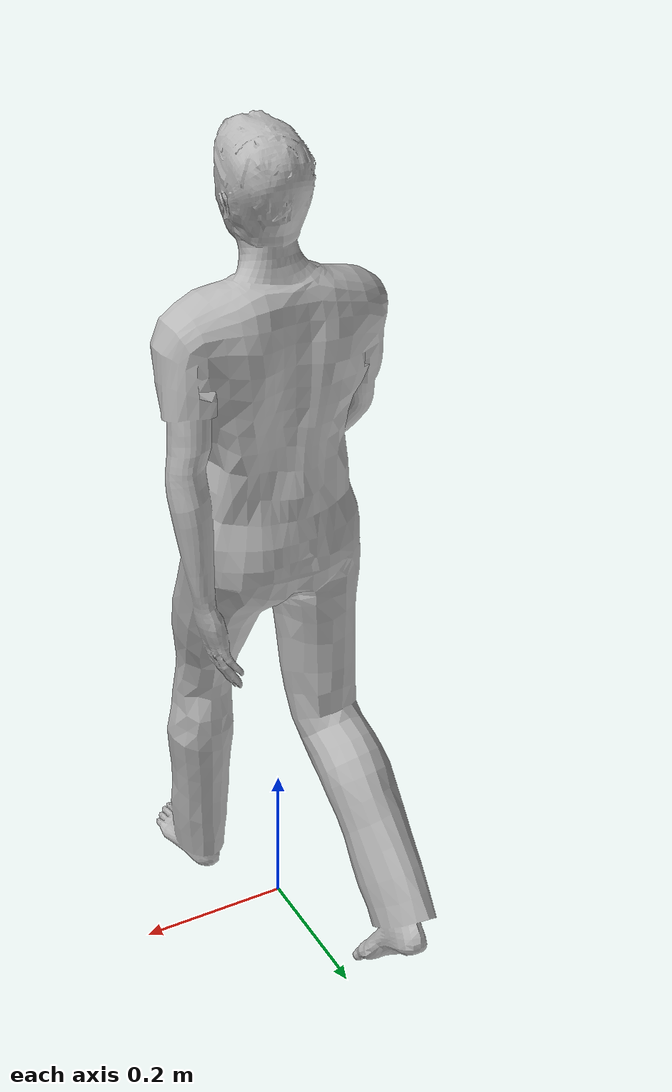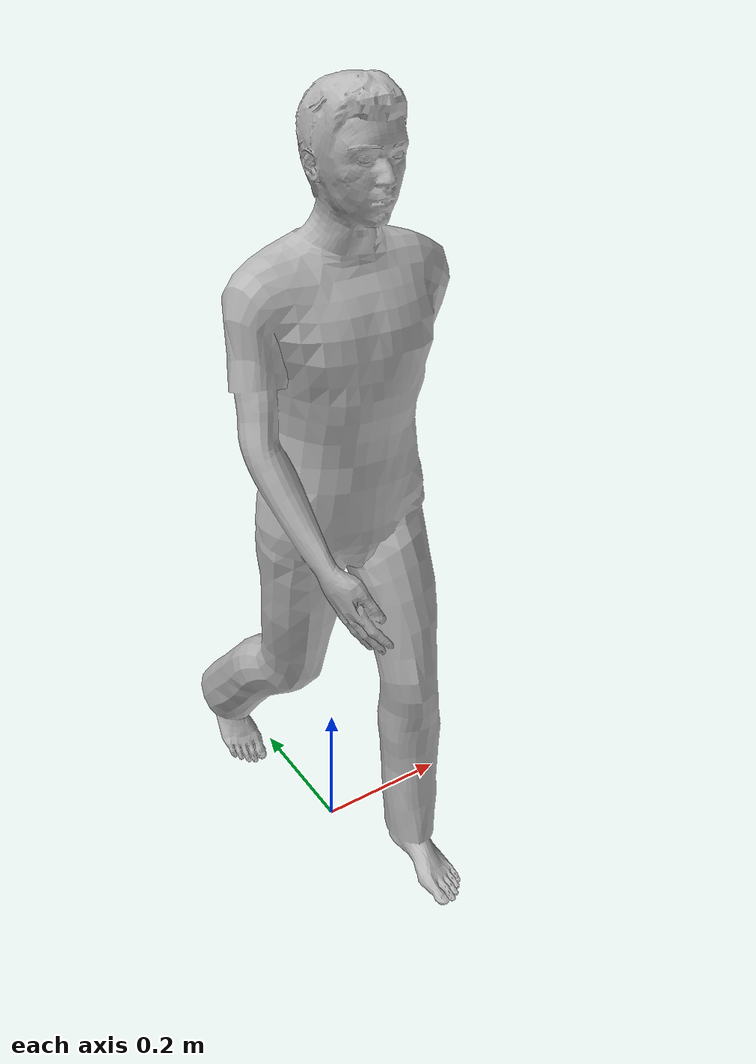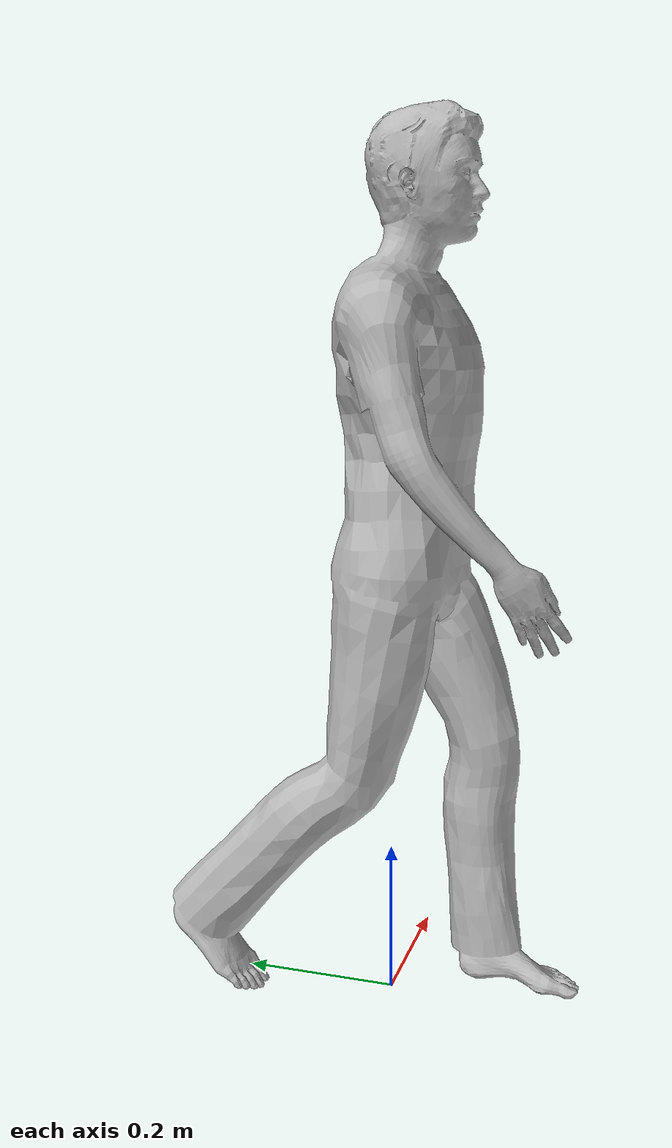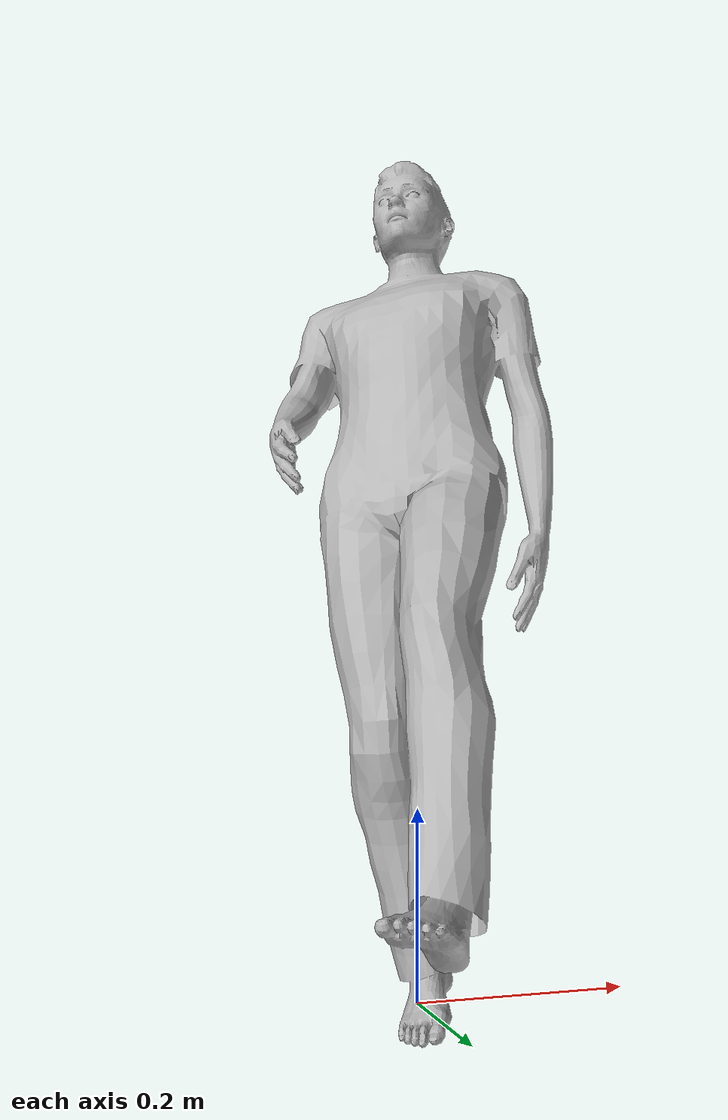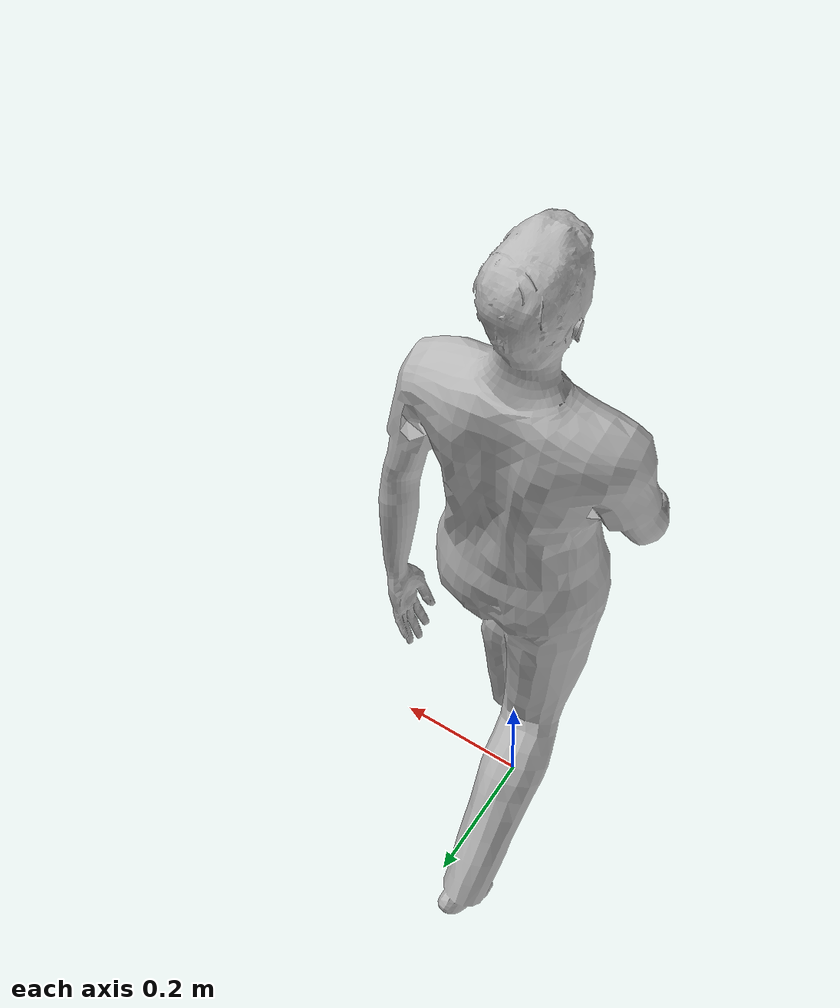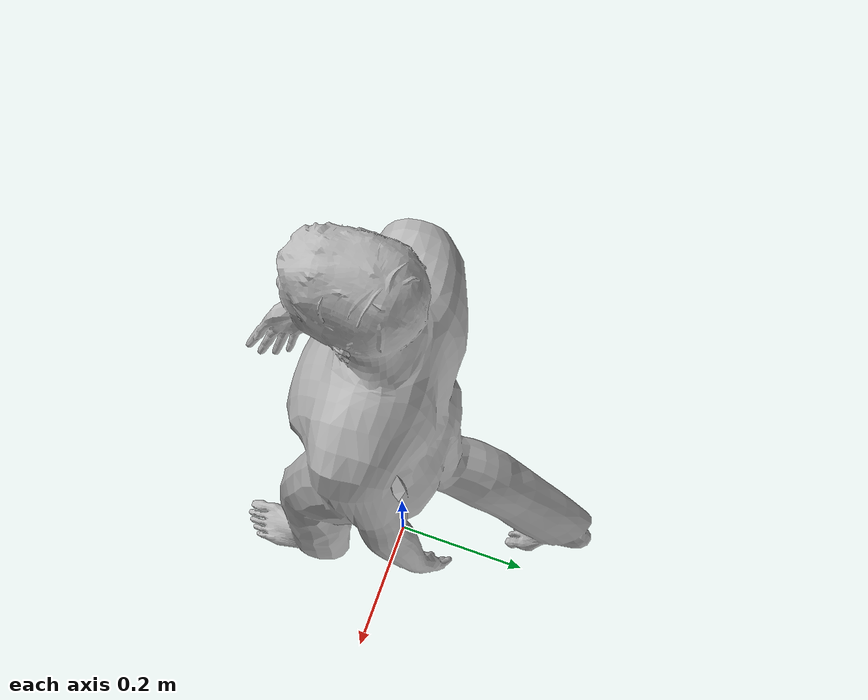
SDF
<?xml version="1.0" ?>
<sdf version="1.5">
  <model name="person_walking">
  <static>1</static>
    <link name="link">
      <inertial>
        <pose>0 0 0.95 0 0 0</pose>
        <mass>80.0</mass>
        <inertia>
          <ixx>27.82</ixx>
          <ixy>0</ixy>
          <ixz>0</ixz>
          <iyy>24.88</iyy>
          <iyz>0</iyz>
          <izz>4.57</izz>
        </inertia>
      </inertial>

      <visual name="visual">
        <pose>0 0 -0.02 0 0 0</pose>
        <geometry>
          <mesh>
            <uri>model://person_walking/meshes/walking.dae</uri>
            <scale>0.6 0.6 0.6</scale> <!-- 视情况调整比例 -->
          </mesh>
        </geometry>
      </visual>
    </link>
  </model>
</sdf>
